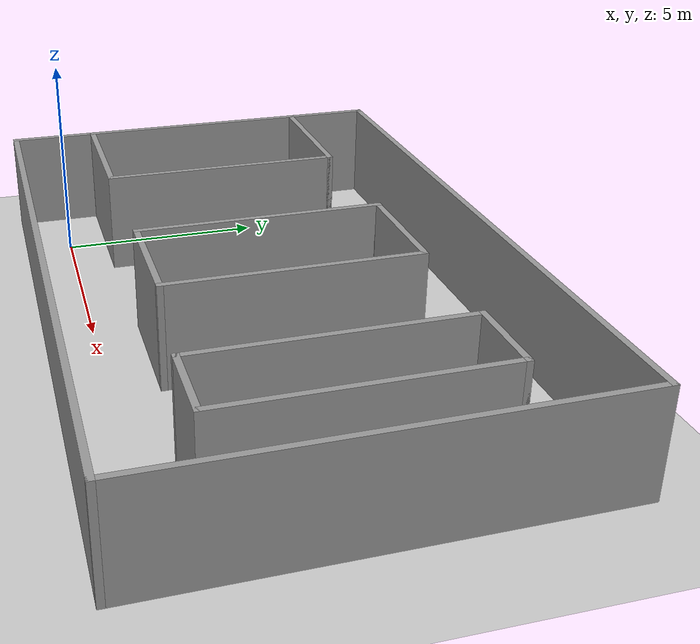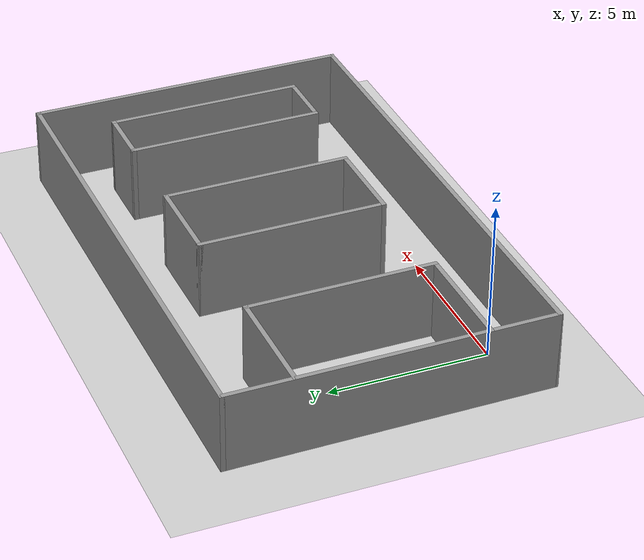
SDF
<sdf version="1.6">
 <world name="default">
  <scene><ambient>0.4 0.4 0.4 1</ambient><background>0.7 0.7 0.7 1</background><shadows>1</shadows></scene>
  <light name="sun" type="directional">
   <pose>0 0 10 0 -0 0</pose>
   <diffuse>0.8 0.8 0.8 1</diffuse>
   <specular>0.2 0.2 0.2 1</specular>
   <attenuation>
    <range>1000</range>
    <constant>0.9</constant>
    <linear>0.01</linear>
    <quadratic>0.001</quadratic>
   </attenuation>
   <direction>-0.5 0.1 -0.9</direction>
  </light>
  <model name="ground_plane">
   <static>1</static>
   <link name="link">
    <collision name="collision">
     <geometry><plane><normal>0 0 1</normal><size>100 100</size></plane></geometry>
     <surface><friction><ode><mu>100</mu><mu2>50</mu2></ode></friction></surface>
    </collision>
    <visual name="visual">
     <cast_shadows>0</cast_shadows>
     <geometry><plane><normal>0 0 1</normal><size>100 100</size></plane></geometry>
     <material>
      <script><uri>file://media/materials/scripts/gazebo.material</uri><name>Gazebo/Grey</name></script>
     </material>
    </visual>
   </link>
  </model>
  <physics name="default_physics" default="0" type="ode">
   <real_time_update_rate>1000</real_time_update_rate>
   <max_step_size>0.001</max_step_size>
   <real_time_factor>1</real_time_factor>
   <ode>
    <solver>
     <type>quick</type>
     <iters>150</iters>
     <precon_iters>0</precon_iters>
     <sor>1.4</sor>
     <use_dynamic_moi_rescaling>1</use_dynamic_moi_rescaling>
    </solver>
    <constraints>
     <cfm>1e-05</cfm>
     <erp>0.2</erp>
     <contact_max_correcting_vel>2000</contact_max_correcting_vel>
     <contact_surface_layer>0.01</contact_surface_layer>
    </constraints>
   </ode>
  </physics>
  <gravity>0 0 -9.8</gravity>
  <magnetic_field>6e-06 2.3e-05 -4.2e-05</magnetic_field>
  <atmosphere type="adiabatic"/>
  <audio><device>default</device></audio>
  <spherical_coordinates>
   <surface_model>EARTH_WGS84</surface_model>
   <latitude_deg>0</latitude_deg>
   <longitude_deg>0</longitude_deg>
   <elevation>0</elevation>
   <heading_deg>0</heading_deg>
  </spherical_coordinates>
  <model name="Untitled">
   <pose>5.95458 3.99977 0 0 0 -1.56364</pose>
   <link name="Wall_0">
    <collision name="Wall_0_Collision">
     <geometry><box><size>10.25 0.15 2.5</size></box></geometry>
     <pose>0 0 1.25 0 -0 0</pose>
    </collision>
    <visual name="Wall_0_Visual">
     <pose>0 0 1.25 0 -0 0</pose>
     <geometry><box><size>10.25 0.15 2.5</size></box></geometry>
     <material>
      <script><uri>file://media/materials/scripts/gazebo.material</uri><name>Gazebo/Grey</name></script>
      <ambient>1 1 1 1</ambient>
     </material>
     <meta><layer>0</layer></meta>
    </visual>
    <pose>0 -8.05 0 0 -0 0</pose>
   </link>
   <link name="Wall_1">
    <collision name="Wall_1_Collision">
     <geometry><box><size>16.25 0.15 2.5</size></box></geometry>
     <pose>0 0 1.25 0 -0 0</pose>
    </collision>
    <visual name="Wall_1_Visual">
     <pose>0 0 1.25 0 -0 0</pose>
     <geometry><box><size>16.25 0.15 2.5</size></box></geometry>
     <material>
      <script><uri>file://media/materials/scripts/gazebo.material</uri><name>Gazebo/Grey</name></script>
      <ambient>1 1 1 1</ambient>
     </material>
     <meta><layer>0</layer></meta>
    </visual>
    <pose>5.05 0 0 0 -0 1.5708</pose>
   </link>
   <link name="Wall_10">
    <collision name="Wall_10_Collision">
     <geometry><box><size>6 0.15 2.5</size></box></geometry>
     <pose>0 0 1.25 0 -0 0</pose>
    </collision>
    <visual name="Wall_10_Visual">
     <pose>0 0 1.25 0 -0 0</pose>
     <geometry><box><size>6 0.15 2.5</size></box></geometry>
     <material>
      <script><uri>file://media/materials/scripts/gazebo.material</uri><name>Gazebo/Grey</name></script>
      <ambient>1 1 1 1</ambient>
     </material>
     <meta><layer>0</layer></meta>
    </visual>
    <pose>-0.072623 -0.961645 0 0 -0 0</pose>
   </link>
   <link name="Wall_11">
    <collision name="Wall_11_Collision">
     <geometry><box><size>3 0.15 2.5</size></box></geometry>
     <pose>0 0 1.25 0 -0 0</pose>
    </collision>
    <visual name="Wall_11_Visual">
     <pose>0 0 1.25 0 -0 0</pose>
     <geometry><box><size>3 0.15 2.5</size></box></geometry>
     <material>
      <script><uri>file://media/materials/scripts/gazebo.material</uri><name>Gazebo/Grey</name></script>
      <ambient>1 1 1 1</ambient>
     </material>
     <meta><layer>0</layer></meta>
    </visual>
    <pose>2.85238 0.463355 0 0 -0 1.5708</pose>
   </link>
   <link name="Wall_12">
    <collision name="Wall_12_Collision">
     <geometry><box><size>6 0.15 2.5</size></box></geometry>
     <pose>0 0 1.25 0 -0 0</pose>
    </collision>
    <visual name="Wall_12_Visual">
     <pose>0 0 1.25 0 -0 0</pose>
     <geometry><box><size>6 0.15 2.5</size></box></geometry>
     <material>
      <script><uri>file://media/materials/scripts/gazebo.material</uri><name>Gazebo/Grey</name></script>
      <ambient>1 1 1 1</ambient>
     </material>
     <meta><layer>0</layer></meta>
    </visual>
    <pose>-0.072623 1.88836 0 0 -0 3.14159</pose>
   </link>
   <link name="Wall_13">
    <collision name="Wall_13_Collision">
     <geometry><box><size>3 0.15 2.5</size></box></geometry>
     <pose>0 0 1.25 0 -0 0</pose>
    </collision>
    <visual name="Wall_13_Visual">
     <pose>0 0 1.25 0 -0 0</pose>
     <geometry><box><size>3 0.15 2.5</size></box></geometry>
     <material>
      <script><uri>file://media/materials/scripts/gazebo.material</uri><name>Gazebo/Grey</name></script>
      <ambient>1 1 1 1</ambient>
     </material>
     <meta><layer>0</layer></meta>
    </visual>
    <pose>-2.99762 0.463355 0 0 -0 -1.5708</pose>
   </link>
   <link name="Wall_14">
    <collision name="Wall_14_Collision">
     <geometry><box><size>0.16 0.15 2.5</size></box></geometry>
     <pose>0 0 1.25 0 -0 0</pose>
    </collision>
    <visual name="Wall_14_Visual">
     <pose>0 0 1.25 0 -0 0</pose>
     <geometry><box><size>0.16 0.15 2.5</size></box></geometry>
     <material>
      <script><uri>file://media/materials/scripts/gazebo.material</uri><name>Gazebo/Grey</name></script>
      <ambient>1 1 1 1</ambient>
     </material>
     <meta><layer>0</layer></meta>
    </visual>
    <pose>-2.99262 -0.961645 0 0 -0 0</pose>
   </link>
   <link name="Wall_16">
    <collision name="Wall_16_Collision">
     <geometry><box><size>6.25 0.15 2.5</size></box></geometry>
     <pose>0 0 1.25 0 -0 0</pose>
    </collision>
    <visual name="Wall_16_Visual">
     <pose>0 0 1.25 0 -0 0</pose>
     <geometry><box><size>6.25 0.15 2.5</size></box></geometry>
     <material>
      <script><uri>file://media/materials/scripts/gazebo.material</uri><name>Gazebo/Grey</name></script>
      <ambient>1 1 1 1</ambient>
     </material>
     <meta><layer>0</layer></meta>
    </visual>
    <pose>0.034887 6.62904 0 0 -0 0</pose>
   </link>
   <link name="Wall_17">
    <collision name="Wall_17_Collision">
     <geometry><box><size>2 0.15 2.5</size></box></geometry>
     <pose>0 0 1.25 0 -0 0</pose>
    </collision>
    <visual name="Wall_17_Visual">
     <pose>0 0 1.25 0 -0 0</pose>
     <geometry><box><size>2 0.15 2.5</size></box></geometry>
     <material>
      <script><uri>file://media/materials/scripts/gazebo.material</uri><name>Gazebo/Grey</name></script>
      <ambient>1 1 1 1</ambient>
     </material>
     <meta><layer>0</layer></meta>
    </visual>
    <pose>3.08489 5.70404 0 0 -0 -1.5708</pose>
   </link>
   <link name="Wall_18">
    <collision name="Wall_18_Collision">
     <geometry><box><size>6.25 0.15 2.5</size></box></geometry>
     <pose>0 0 1.25 0 -0 0</pose>
    </collision>
    <visual name="Wall_18_Visual">
     <pose>0 0 1.25 0 -0 0</pose>
     <geometry><box><size>6.25 0.15 2.5</size></box></geometry>
     <material>
      <script><uri>file://media/materials/scripts/gazebo.material</uri><name>Gazebo/Grey</name></script>
      <ambient>1 1 1 1</ambient>
     </material>
     <meta><layer>0</layer></meta>
    </visual>
    <pose>0.034887 4.77904 0 0 -0 3.14159</pose>
   </link>
   <link name="Wall_19">
    <collision name="Wall_19_Collision">
     <geometry><box><size>2 0.15 2.5</size></box></geometry>
     <pose>0 0 1.25 0 -0 0</pose>
    </collision>
    <visual name="Wall_19_Visual">
     <pose>0 0 1.25 0 -0 0</pose>
     <geometry><box><size>2 0.15 2.5</size></box></geometry>
     <material>
      <script><uri>file://media/materials/scripts/gazebo.material</uri><name>Gazebo/Grey</name></script>
      <ambient>1 1 1 1</ambient>
     </material>
     <meta><layer>0</layer></meta>
    </visual>
    <pose>-3.01511 5.70404 0 0 -0 1.5708</pose>
   </link>
   <link name="Wall_2">
    <collision name="Wall_2_Collision">
     <geometry><box><size>10.25 0.15 2.5</size></box></geometry>
     <pose>0 0 1.25 0 -0 0</pose>
    </collision>
    <visual name="Wall_2_Visual">
     <pose>0 0 1.25 0 -0 0</pose>
     <geometry><box><size>10.25 0.15 2.5</size></box></geometry>
     <material>
      <script><uri>file://media/materials/scripts/gazebo.material</uri><name>Gazebo/Grey</name></script>
      <ambient>1 1 1 1</ambient>
     </material>
     <meta><layer>0</layer></meta>
    </visual>
    <pose>0 8.05 0 0 -0 3.14159</pose>
   </link>
   <link name="Wall_20">
    <collision name="Wall_20_Collision">
     <geometry><box><size>0.15 0.15 2.5</size></box></geometry>
     <pose>0 0 1.25 0 -0 0</pose>
    </collision>
    <visual name="Wall_20_Visual">
     <pose>0 0 1.25 0 -0 0</pose>
     <geometry><box><size>0.15 0.15 2.5</size></box></geometry>
     <material>
      <script><uri>file://media/materials/scripts/gazebo.material</uri><name>Gazebo/Grey</name></script>
      <ambient>1 1 1 1</ambient>
     </material>
     <meta><layer>0</layer></meta>
    </visual>
    <pose>-3.01511 6.62904 0 0 -0 0</pose>
   </link>
   <link name="Wall_3">
    <collision name="Wall_3_Collision">
     <geometry><box><size>16.25 0.15 2.5</size></box></geometry>
     <pose>0 0 1.25 0 -0 0</pose>
    </collision>
    <visual name="Wall_3_Visual">
     <pose>0 0 1.25 0 -0 0</pose>
     <geometry><box><size>16.25 0.15 2.5</size></box></geometry>
     <material>
      <script><uri>file://media/materials/scripts/gazebo.material</uri><name>Gazebo/Grey</name></script>
      <ambient>1 1 1 1</ambient>
     </material>
     <meta><layer>0</layer></meta>
    </visual>
    <pose>-5.05 0 0 0 -0 -1.5708</pose>
   </link>
   <link name="Wall_5">
    <collision name="Wall_5_Collision">
     <geometry><box><size>3.75 0.15 2.5</size></box></geometry>
     <pose>0 0 1.25 0 -0 0</pose>
    </collision>
    <visual name="Wall_5_Visual">
     <pose>0 0 1.25 0 -0 0</pose>
     <geometry><box><size>3.75 0.15 2.5</size></box></geometry>
     <material>
      <script><uri>file://media/materials/scripts/gazebo.material</uri><name>Gazebo/Grey</name></script>
      <ambient>1 1 1 1</ambient>
     </material>
     <meta><layer>0</layer></meta>
    </visual>
    <pose>-2.92766 -6.24512 0 0 -0 1.5708</pose>
   </link>
   <link name="Wall_6">
    <collision name="Wall_6_Collision">
     <geometry><box><size>6 0.15 2.5</size></box></geometry>
     <pose>0 0 1.25 0 -0 0</pose>
    </collision>
    <visual name="Wall_6_Visual">
     <pose>0 0 1.25 0 -0 0</pose>
     <geometry><box><size>6 0.15 2.5</size></box></geometry>
     <material>
      <script><uri>file://media/materials/scripts/gazebo.material</uri><name>Gazebo/Grey</name></script>
      <ambient>1 1 1 1</ambient>
     </material>
     <meta><layer>0</layer></meta>
    </visual>
    <pose>-0.002662 -4.44512 0 0 -0 0</pose>
   </link>
   <link name="Wall_7">
    <collision name="Wall_7_Collision">
     <geometry><box><size>3.75 0.15 2.5</size></box></geometry>
     <pose>0 0 1.25 0 -0 0</pose>
    </collision>
    <visual name="Wall_7_Visual">
     <pose>0 0 1.25 0 -0 0</pose>
     <geometry><box><size>3.75 0.15 2.5</size></box></geometry>
     <material>
      <script><uri>file://media/materials/scripts/gazebo.material</uri><name>Gazebo/Grey</name></script>
      <ambient>1 1 1 1</ambient>
     </material>
     <meta><layer>0</layer></meta>
    </visual>
    <pose>2.92234 -6.24512 0 0 -0 -1.5708</pose>
   </link>
   <link name="Wall_8">
    <collision name="Wall_8_Collision">
     <geometry><box><size>0.15 0.15 2.5</size></box></geometry>
     <pose>0 0 1.25 0 -0 0</pose>
    </collision>
    <visual name="Wall_8_Visual">
     <pose>0 0 1.25 0 -0 0</pose>
     <geometry><box><size>0.15 0.15 2.5</size></box></geometry>
     <material>
      <script><uri>file://media/materials/scripts/gazebo.material</uri><name>Gazebo/Grey</name></script>
      <ambient>1 1 1 1</ambient>
     </material>
     <meta><layer>0</layer></meta>
    </visual>
    <pose>2.92234 -8.04512 0 0 -0 0</pose>
   </link>
   <static>1</static>
  </model>
 </world>
</sdf>
